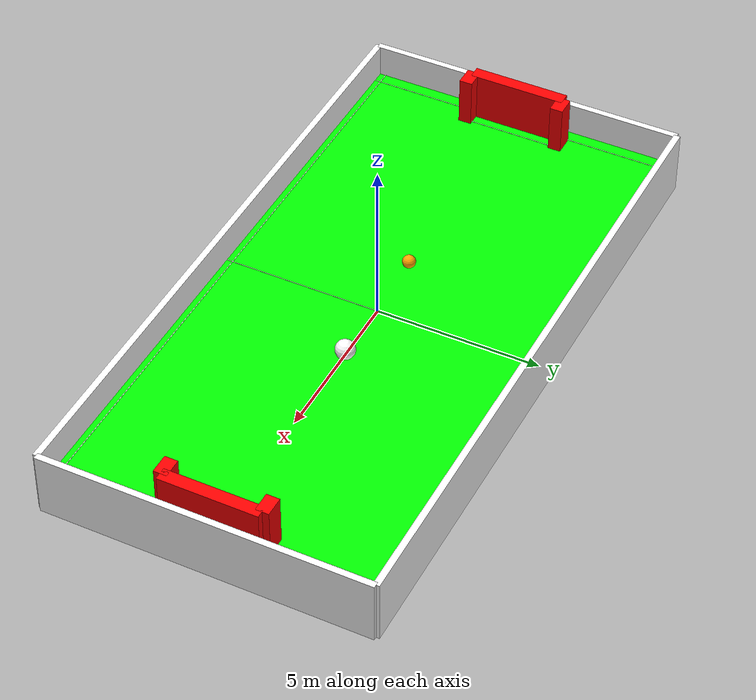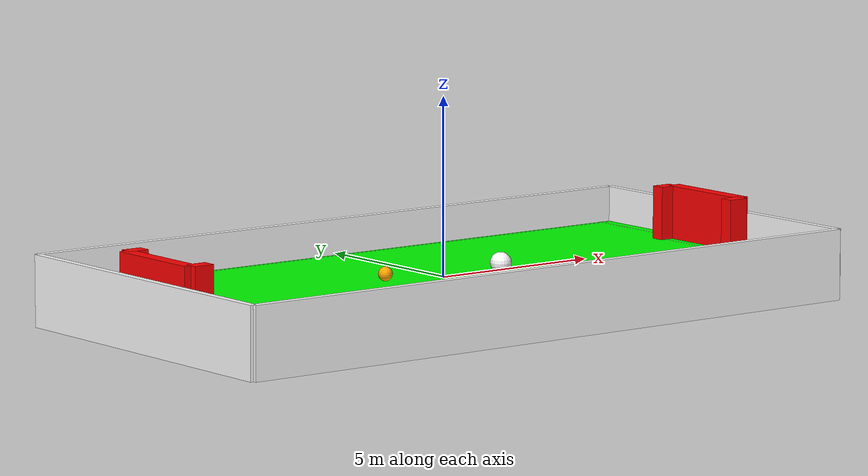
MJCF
<mujoco>
    <asset>
        <material name="floor" texture="checks1" texrepeat="2 2" texuniform="true"/>
        <texture name="checks1" builtin="checker" type='2d' width='256' height='256' rgb1="1 1 1" rgb2="0 0 0" />
        <material name="object" texture="checks1" specular="1" shininess="0.7" reflectance="0.5" rgba="0.8 0.8 0.8 1" />
    </asset>
    <default>
        <geom condim="3" friction="1.5 0.5 0.5"/>
    </default>

    <option solver="PGS" iterations="50" tolerance="1e-10"/>

    <worldbody>
        <!-- Stadium -->
        <geom name="stadium" type="plane" size="10 5 0.1" pos="0 0 0" rgba="0 1 0 1" />

        <!-- Boundaries -->
        <geom name="boundary_1" type="box" size="10 0.1 1" pos="0 5 0" rgba="1 1 1 1" />
        <geom name="boundary_2" type="box" size="10 0.1 1" pos="0 -5 0" rgba="1 1 1 1" />
        <geom name="boundary_3" type="box" size="5 0.1 1" pos="10 0 0" rgba="1 1 1 1" euler="0 0 90" />
        <geom name="boundary_4" type="box" size="5 0.1 1" pos="-10 0 0" rgba="1 1 1 1" euler="0 0 90" />

        <!-- Goal posts -->
        <!-- Goal post 1 -->
        <body name="Goal_post_1">
            <geom type="box" size="1.5 0.2 1.0" pos="9.5 0 0.5" rgba="1 0 0 1" euler="0 0 90" />
            <geom type="box" size="0.3 0.2 1.0" pos="9.2 1.5 0.5" rgba="1 0 0 1" />
            <geom type="box" size="0.3 0.2 1.0" pos="9.2 -1.5 0.5" rgba="1 0 0 1" />
        </body>

        <!-- Goal post 2 -->
        <body name="Goal_post_2">
            <geom type="box" size="1.5 0.2 1.0" pos="-9.5 0 0.5" rgba="1 0 0 1" euler="0 0 90" />
            <geom type="box" size="0.3 0.2 1.0" pos="-9.2 1.5 0.5" rgba="1 0 0 1" />
            <geom type="box" size="0.3 0.2 1.0" pos="-9.2 -1.5 0.5" rgba="1 0 0 1" />
        </body>

        <!-- Field Markings -->
        <!-- Boundary lines -->
        <geom name="Touch_lines1" type="box" size="0.001 10 0.01" pos="0 4.7 0" rgba="1 1 1 1" euler="90 0 90"/>
        <geom name="Touch_lines2" type="box" size="0.001 10 0.01" pos="0 -4.7 0" rgba="1 1 1 1" euler="90 0 90"/>
        <geom name="Touch_lines3" type="box" size="0.001 5 0.01" pos="-9.5 0 0" rgba="1 1 1 1" euler="0 90 0"/>
        <geom name="Touch_lines4" type="box" size="0.001 5 0.01" pos="9.5 0 0" rgba="1 1 1 1" euler="0 90 0"/>

        <!-- Goal lines -->
        <geom name="Goal_lines1" type="box" size="0.001 1.7 0.01" pos="9 0 0" rgba="1 1 1 1" euler="0 90 0"/>
        <geom name="Goal_lines2" type="box" size="0.001 1.7 0.01" pos="-9 0 0" rgba="1 1 1 1" euler="0 90 0"/>

        <!-- Halfway Line -->
        <geom name="Halfway Line" type="box" size="0.001 5 0.01" pos="0 0 0" rgba="1 1 1 1" euler="0 90 0"/>

        <!-- Agent (larger sphero) -->
        <!-- Agent (larger sphero) -->
        <body name="agent" pos="-2 0 0.3">
            <geom name="sphero_agent" type="sphere" size="0.2" rgba="1 0.647 0 1" mass="5" friction="1" />
            <joint type="free"/>
        </body>

        <!-- Ball (smaller sphero) -->
        <body name="ball" pos="2 0 0.2">
            <geom name="sphero_ball" type="sphere" size="0.3" rgba="1 1 1 1" mass="1" material="object" friction="0.8" />
            <joint type="free"/>
        </body>
    </worldbody>
</mujoco>
